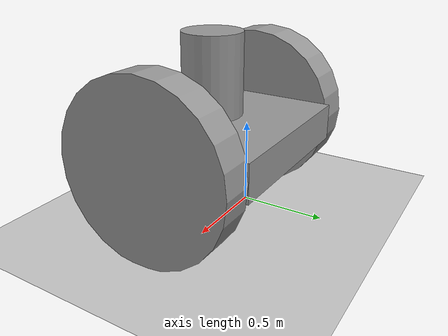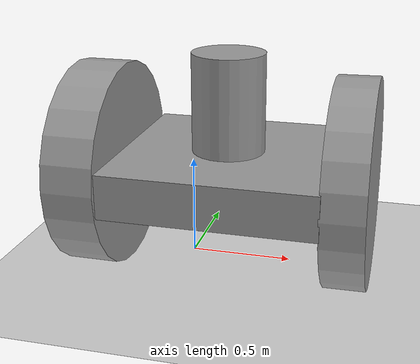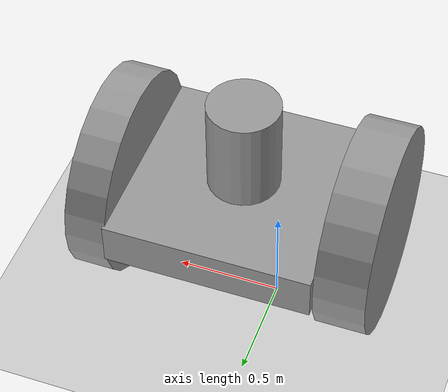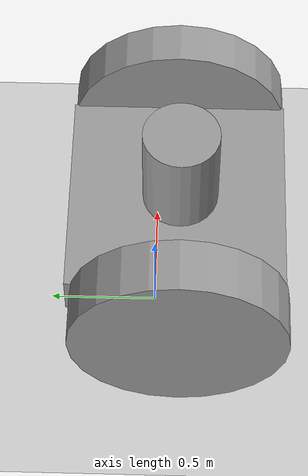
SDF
<sdf version="1.6">
 <world name="default">
  <light name="sun" type="directional">
   <pose>0 0 10 0 -0 0</pose>
   <diffuse>0.8 0.8 0.8 1</diffuse>
   <specular>0.2 0.2 0.2 1</specular>
   <attenuation>
    <range>1000</range>
    <constant>0.9</constant>
    <linear>0.01</linear>
    <quadratic>0.001</quadratic>
   </attenuation>
   <direction>-0.5 0.1 -0.9</direction>
  </light>
  <model name="ground_plane">
   <static>1</static>
   <link name="link">
    <collision name="collision">
     <geometry><plane><normal>0 0 1</normal><size>100 100</size></plane></geometry>
     <surface>
      <contact><collide_bitmask>65535</collide_bitmask></contact>
      <friction><ode><mu>100</mu><mu2>50</mu2></ode></friction>
     </surface>
    </collision>
    <visual name="visual">
     <cast_shadows>0</cast_shadows>
     <geometry><plane><normal>0 0 1</normal><size>100 100</size></plane></geometry>
     <material>
      <script><uri>file://media/materials/scripts/gazebo.material</uri><name>Gazebo/Grey</name></script>
     </material>
    </visual>
   </link>
  </model>
  <gravity>0 0 -9.8</gravity>
  <magnetic_field>6e-06 2.3e-05 -4.2e-05</magnetic_field>
  <atmosphere type="adiabatic"/>
  <physics name="default_physics" default="0" type="ode">
   <max_step_size>0.001</max_step_size>
   <real_time_factor>1</real_time_factor>
   <real_time_update_rate>1000</real_time_update_rate>
  </physics>
  <scene><ambient>0.4 0.4 0.4 1</ambient><background>0.7 0.7 0.7 1</background><shadows>1</shadows></scene>
  <audio><device>default</device></audio>
  <spherical_coordinates>
   <surface_model>EARTH_WGS84</surface_model>
   <latitude_deg>0</latitude_deg>
   <longitude_deg>0</longitude_deg>
   <elevation>0</elevation>
   <heading_deg>0</heading_deg>
  </spherical_coordinates>
  <model name="robot">
   <link name="link_0">
    <inertial>
     <mass>0.210647</mass>
     <inertia>
      <ixx>0.0183329</ixx>
      <ixy>0</ixy>
      <ixz>0</ixz>
      <iyy>0.0183329</iyy>
      <iyz>0</iyz>
      <izz>0.0351079</izz>
     </inertia>
    </inertial>
    <pose>0.010031 0.00904 -0.082704 0 -0 0</pose>
    <visual name="visual">
     <geometry><box><size>1 1 0.210655</size></box></geometry>
     <material>
      <lighting>1</lighting>
      <script><uri>file://media/materials/scripts/gazebo.material</uri><name>Gazebo/Grey</name></script>
      <emissive>0 0 0 1</emissive>
     </material>
    </visual>
    <collision name="collision">
     <geometry><box><size>1 1 0.210655</size></box></geometry>
     <surface>
      <friction>
       <ode><mu>1</mu><mu2>1</mu2><fdir1>0 0 0</fdir1><slip1>0</slip1><slip2>0</slip2></ode>
       <torsional>
        <coefficient>1</coefficient>
        <patch_radius>0</patch_radius>
        <surface_radius>0</surface_radius>
        <use_patch_radius>1</use_patch_radius>
        <ode><slip>0</slip></ode>
       </torsional>
      </friction>
      <bounce><restitution_coefficient>0</restitution_coefficient><threshold>1e+06</threshold></bounce>
      <contact>
       <collide_without_contact>0</collide_without_contact>
       <collide_without_contact_bitmask>1</collide_without_contact_bitmask>
       <collide_bitmask>1</collide_bitmask>
       <ode>
        <soft_cfm>0</soft_cfm>
        <soft_erp>0.2</soft_erp>
        <kp>1e+13</kp>
        <kd>1</kd>
        <max_vel>0.01</max_vel>
        <min_depth>0</min_depth>
       </ode>
       <bullet>
        <split_impulse>1</split_impulse>
        <split_impulse_penetration_threshold>-0.01</split_impulse_penetration_threshold>
        <soft_cfm>0</soft_cfm>
        <soft_erp>0.2</soft_erp>
        <kp>1e+13</kp>
        <kd>1</kd>
       </bullet>
      </contact>
     </surface>
    </collision>
   </link>
   <link name="link_1">
    <inertial>
     <mass>0.197908</mass>
     <inertia>
      <ixx>0.0130152</ixx>
      <ixy>0</ixy>
      <ixz>0</ixz>
      <iyy>0.0130152</iyy>
      <iyz>0</iyz>
      <izz>0.0247385</izz>
     </inertia>
    </inertial>
    <pose>0.602634 0.006798 -0.092623 0 1.5581 0</pose>
    <visual name="visual">
     <geometry><cylinder><radius>0.5</radius><length>0.197905</length></cylinder></geometry>
     <material>
      <lighting>1</lighting>
      <script><uri>file://media/materials/scripts/gazebo.material</uri><name>Gazebo/Grey</name></script>
      <emissive>0 0 0 1</emissive>
     </material>
    </visual>
    <collision name="collision">
     <geometry><cylinder><radius>0.5</radius><length>0.197905</length></cylinder></geometry>
     <surface>
      <friction>
       <ode><mu>1</mu><mu2>1</mu2><fdir1>0 0 0</fdir1><slip1>0</slip1><slip2>0</slip2></ode>
       <torsional>
        <coefficient>1</coefficient>
        <patch_radius>0</patch_radius>
        <surface_radius>0</surface_radius>
        <use_patch_radius>1</use_patch_radius>
        <ode><slip>0</slip></ode>
       </torsional>
      </friction>
      <bounce><restitution_coefficient>0</restitution_coefficient><threshold>1e+06</threshold></bounce>
      <contact>
       <collide_without_contact>0</collide_without_contact>
       <collide_without_contact_bitmask>1</collide_without_contact_bitmask>
       <collide_bitmask>1</collide_bitmask>
       <ode>
        <soft_cfm>0</soft_cfm>
        <soft_erp>0.2</soft_erp>
        <kp>1e+13</kp>
        <kd>1</kd>
        <max_vel>0.01</max_vel>
        <min_depth>0</min_depth>
       </ode>
       <bullet>
        <split_impulse>1</split_impulse>
        <split_impulse_penetration_threshold>-0.01</split_impulse_penetration_threshold>
        <soft_cfm>0</soft_cfm>
        <soft_erp>0.2</soft_erp>
        <kp>1e+13</kp>
        <kd>1</kd>
       </bullet>
      </contact>
     </surface>
    </collision>
   </link>
   <link name="link_2">
    <inertial>
     <mass>0.245765</mass>
     <inertia>
      <ixx>0.0165974</ixx>
      <ixy>0</ixy>
      <ixz>0</ixz>
      <iyy>0.0165974</iyy>
      <iyz>0</iyz>
      <izz>0.0307207</izz>
     </inertia>
    </inertial>
    <pose>-0.616285 -0.010112 -0.078315 0 -1.56868 0</pose>
    <visual name="visual">
     <geometry><cylinder><radius>0.5</radius><length>0.24577</length></cylinder></geometry>
     <material>
      <lighting>1</lighting>
      <script><uri>file://media/materials/scripts/gazebo.material</uri><name>Gazebo/Grey</name></script>
      <emissive>0 0 0 1</emissive>
     </material>
    </visual>
    <collision name="collision">
     <geometry><cylinder><radius>0.5</radius><length>0.24577</length></cylinder></geometry>
     <surface>
      <friction>
       <ode><mu>1</mu><mu2>1</mu2><fdir1>0 0 0</fdir1><slip1>0</slip1><slip2>0</slip2></ode>
       <torsional>
        <coefficient>1</coefficient>
        <patch_radius>0</patch_radius>
        <surface_radius>0</surface_radius>
        <use_patch_radius>1</use_patch_radius>
        <ode><slip>0</slip></ode>
       </torsional>
      </friction>
      <bounce><restitution_coefficient>0</restitution_coefficient><threshold>1e+06</threshold></bounce>
      <contact>
       <collide_without_contact>0</collide_without_contact>
       <collide_without_contact_bitmask>1</collide_without_contact_bitmask>
       <collide_bitmask>1</collide_bitmask>
       <ode>
        <soft_cfm>0</soft_cfm>
        <soft_erp>0.2</soft_erp>
        <kp>1e+13</kp>
        <kd>1</kd>
        <max_vel>0.01</max_vel>
        <min_depth>0</min_depth>
       </ode>
       <bullet>
        <split_impulse>1</split_impulse>
        <split_impulse_penetration_threshold>-0.01</split_impulse_penetration_threshold>
        <soft_cfm>0</soft_cfm>
        <soft_erp>0.2</soft_erp>
        <kp>1e+13</kp>
        <kd>1</kd>
       </bullet>
      </contact>
     </surface>
    </collision>
   </link>
   <link name="link_4">
    <inertial>
     <mass>0.0591224</mass>
     <inertia>
      <ixx>0.00160594</ixx>
      <ixy>0</ixy>
      <ixz>0</ixz>
      <iyy>0.00160594</iyy>
      <iyz>0</iyz>
      <izz>0.000902384</izz>
     </inertia>
    </inertial>
    <pose>0.00362 -0.005726 0.253641 0 -0 0</pose>
    <visual name="visual">
     <geometry><cylinder><radius>0.174717</radius><length>0.484125</length></cylinder></geometry>
     <material>
      <lighting>1</lighting>
      <script><uri>file://media/materials/scripts/gazebo.material</uri><name>Gazebo/Grey</name></script>
      <emissive>0 0 0 1</emissive>
     </material>
    </visual>
    <collision name="collision">
     <geometry><cylinder><radius>0.174717</radius><length>0.484125</length></cylinder></geometry>
     <surface>
      <friction>
       <ode><mu>1</mu><mu2>1</mu2><fdir1>0 0 0</fdir1><slip1>0</slip1><slip2>0</slip2></ode>
       <torsional>
        <coefficient>1</coefficient>
        <patch_radius>0</patch_radius>
        <surface_radius>0</surface_radius>
        <use_patch_radius>1</use_patch_radius>
        <ode><slip>0</slip></ode>
       </torsional>
      </friction>
      <bounce><restitution_coefficient>0</restitution_coefficient><threshold>1e+06</threshold></bounce>
      <contact>
       <collide_without_contact>0</collide_without_contact>
       <collide_without_contact_bitmask>1</collide_without_contact_bitmask>
       <collide_bitmask>1</collide_bitmask>
       <ode>
        <soft_cfm>0</soft_cfm>
        <soft_erp>0.2</soft_erp>
        <kp>1e+13</kp>
        <kd>1</kd>
        <max_vel>0.01</max_vel>
        <min_depth>0</min_depth>
       </ode>
       <bullet>
        <split_impulse>1</split_impulse>
        <split_impulse_penetration_threshold>-0.01</split_impulse_penetration_threshold>
        <soft_cfm>0</soft_cfm>
        <soft_erp>0.2</soft_erp>
        <kp>1e+13</kp>
        <kd>1</kd>
       </bullet>
      </contact>
     </surface>
    </collision>
   </link>
   <joint name="link_0_JOINT_0" type="fixed">
    <parent>link_0</parent>
    <child>link_4</child>
    <physics>
     <ode><limit><cfm>0</cfm><erp>0.2</erp></limit><suspension><cfm>0</cfm><erp>0.2</erp></suspension></ode>
    </physics>
   </joint>
   <joint name="link_0_JOINT_1" type="revolute">
    <parent>link_0</parent>
    <child>link_1</child>
    <axis>
     <xyz>0 0 1</xyz>
     <use_parent_model_frame>0</use_parent_model_frame>
     <limit>
      <lower>-1.79769e+308</lower>
      <upper>1.79769e+308</upper>
      <effort>-1</effort>
      <velocity>-1</velocity>
     </limit>
     <dynamics>
      <spring_reference>0</spring_reference>
      <spring_stiffness>0</spring_stiffness>
      <damping>0</damping>
     </dynamics>
    </axis>
    <physics>
     <ode><limit><cfm>0</cfm><erp>0.2</erp></limit><suspension><cfm>0</cfm><erp>0.2</erp></suspension></ode>
    </physics>
   </joint>
   <joint name="link_0_JOINT_2" type="revolute">
    <parent>link_0</parent>
    <child>link_2</child>
    <axis>
     <xyz>0 0 1</xyz>
     <use_parent_model_frame>0</use_parent_model_frame>
     <limit>
      <lower>-1.79769e+308</lower>
      <upper>1.79769e+308</upper>
      <effort>-1</effort>
      <velocity>-1</velocity>
     </limit>
     <dynamics>
      <spring_reference>0</spring_reference>
      <spring_stiffness>0</spring_stiffness>
      <damping>0</damping>
     </dynamics>
    </axis>
    <physics>
     <ode><limit><cfm>0</cfm><erp>0.2</erp></limit><suspension><cfm>0</cfm><erp>0.2</erp></suspension></ode>
    </physics>
   </joint>
   <static>0</static>
   <pose>0.205976 -0.107477 0.582704 0 -0 0</pose>
  </model>
 </world>
</sdf>
